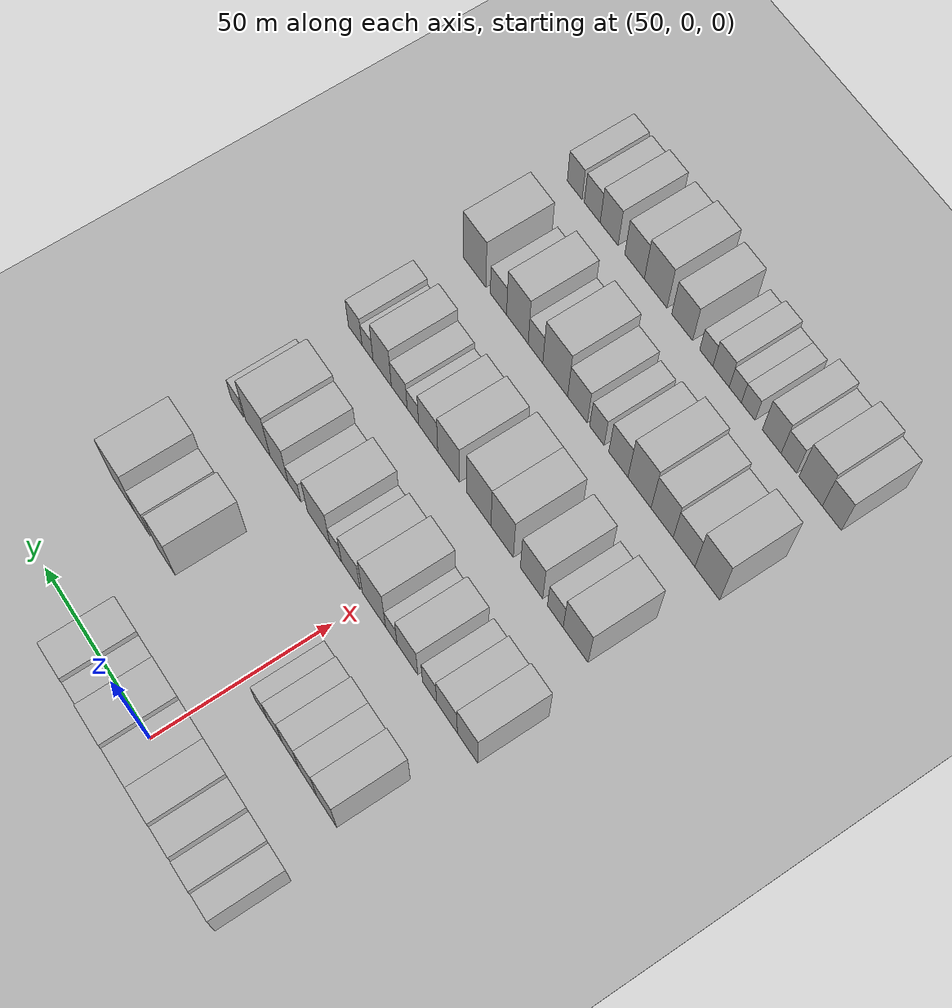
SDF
<sdf version="1.6">
 <world name="default">
  <include><name>ground_plane_1</name><uri>model://HANNAS_ground_plane</uri></include>
  <include>
   <name>ground_plane_2</name>
   <uri>model://HANNAS_ground_plane</uri>
   <pose>100 0 0  0 0 0</pose>
  </include>
  <model name="building_61">
   <static>1</static>
   <pose>50.0000 -42.6842 0 0.000000 0.000000 0.000000</pose>
   <link name="link">
    <pose>0 0 7.50 0 0 0</pose>
    <collision name="collision"><geometry><box><size>20.0000 7.1653 15.0000</size></box></geometry></collision>
    <visual name="visual">
     <cast_shadows>0</cast_shadows>
     <geometry><box><size>20.0000 7.1653 15.0000</size></box></geometry>
     <material>
      <script>
       <uri>model://HANNAS_wall/materials/scripts</uri>
       <uri>model://HANNAS_wall/materials/textures</uri>
       <name>vrc/HANNAS_wall</name>
      </script>
     </material>
    </visual>
   </link>
  </model>
  <model name="building_62">
   <static>1</static>
   <pose>50.0000 -35.2547 0 0.000000 0.000000 0.000000</pose>
   <link name="link">
    <pose>0 0 9.00 0 0 0</pose>
    <collision name="collision"><geometry><box><size>20.0000 7.6937 18.0000</size></box></geometry></collision>
    <visual name="visual">
     <cast_shadows>0</cast_shadows>
     <geometry><box><size>20.0000 7.6937 18.0000</size></box></geometry>
     <material>
      <script>
       <uri>model://HANNAS_wall/materials/scripts</uri>
       <uri>model://HANNAS_wall/materials/textures</uri>
       <name>vrc/HANNAS_wall</name>
      </script>
     </material>
    </visual>
   </link>
  </model>
  <model name="building_63">
   <static>1</static>
   <pose>50.0000 -26.3390 0 0.000000 0.000000 0.000000</pose>
   <link name="link">
    <pose>0 0 9.00 0 0 0</pose>
    <collision name="collision"><geometry><box><size>20.0000 8.1377 18.0000</size></box></geometry></collision>
    <visual name="visual">
     <cast_shadows>0</cast_shadows>
     <geometry><box><size>20.0000 8.1377 18.0000</size></box></geometry>
     <material>
      <script>
       <uri>model://HANNAS_wall/materials/scripts</uri>
       <uri>model://HANNAS_wall/materials/textures</uri>
       <name>vrc/HANNAS_wall</name>
      </script>
     </material>
    </visual>
   </link>
  </model>
  <model name="building_64">
   <static>1</static>
   <pose>50.0000 -17.4439 0 0.000000 0.000000 0.000000</pose>
   <link name="link">
    <pose>0 0 10.50 0 0 0</pose>
    <collision name="collision"><geometry><box><size>20.0000 9.6526 21.0000</size></box></geometry></collision>
    <visual name="visual">
     <cast_shadows>0</cast_shadows>
     <geometry><box><size>20.0000 9.6526 21.0000</size></box></geometry>
     <material>
      <script>
       <uri>model://HANNAS_wall/materials/scripts</uri>
       <uri>model://HANNAS_wall/materials/textures</uri>
       <name>vrc/HANNAS_wall</name>
      </script>
     </material>
    </visual>
   </link>
  </model>
  <model name="building_65">
   <static>1</static>
   <pose>50.0000 -7.3971 0 0.000000 0.000000 0.000000</pose>
   <link name="link">
    <pose>0 0 10.50 0 0 0</pose>
    <collision name="collision"><geometry><box><size>20.0000 10.4410 21.0000</size></box></geometry></collision>
    <visual name="visual">
     <cast_shadows>0</cast_shadows>
     <geometry><box><size>20.0000 10.4410 21.0000</size></box></geometry>
     <material>
      <script>
       <uri>model://HANNAS_wall/materials/scripts</uri>
       <uri>model://HANNAS_wall/materials/textures</uri>
       <name>vrc/HANNAS_wall</name>
      </script>
     </material>
    </visual>
   </link>
  </model>
  <model name="building_66">
   <static>1</static>
   <pose>50.0000 3.3066 0 0.000000 0.000000 0.000000</pose>
   <link name="link">
    <pose>0 0 12.00 0 0 0</pose>
    <collision name="collision"><geometry><box><size>20.0000 10.9665 24.0000</size></box></geometry></collision>
    <visual name="visual">
     <cast_shadows>0</cast_shadows>
     <geometry><box><size>20.0000 10.9665 24.0000</size></box></geometry>
     <material>
      <script>
       <uri>model://HANNAS_wall/materials/scripts</uri>
       <uri>model://HANNAS_wall/materials/textures</uri>
       <name>vrc/HANNAS_wall</name>
      </script>
     </material>
    </visual>
   </link>
  </model>
  <model name="building_67">
   <static>1</static>
   <pose>50.0000 12.7950 0 0.000000 0.000000 0.000000</pose>
   <link name="link">
    <pose>0 0 9.00 0 0 0</pose>
    <collision name="collision"><geometry><box><size>20.0000 8.0103 18.0000</size></box></geometry></collision>
    <visual name="visual">
     <cast_shadows>0</cast_shadows>
     <geometry><box><size>20.0000 8.0103 18.0000</size></box></geometry>
     <material>
      <script>
       <uri>model://HANNAS_wall/materials/scripts</uri>
       <uri>model://HANNAS_wall/materials/textures</uri>
       <name>vrc/HANNAS_wall</name>
      </script>
     </material>
    </visual>
   </link>
  </model>
  <model name="building_68">
   <static>1</static>
   <pose>50.0000 21.8541 0 0.000000 0.000000 0.000000</pose>
   <link name="link">
    <pose>0 0 10.50 0 0 0</pose>
    <collision name="collision"><geometry><box><size>20.0000 10.1078 21.0000</size></box></geometry></collision>
    <visual name="visual">
     <cast_shadows>0</cast_shadows>
     <geometry><box><size>20.0000 10.1078 21.0000</size></box></geometry>
     <material>
      <script>
       <uri>model://HANNAS_wall/materials/scripts</uri>
       <uri>model://HANNAS_wall/materials/textures</uri>
       <name>vrc/HANNAS_wall</name>
      </script>
     </material>
    </visual>
   </link>
  </model>
  <model name="building_180">
   <static>1</static>
   <pose>85.0000 -37.4590 0 0.000000 0.000000 0.000000</pose>
   <link name="link">
    <pose>0 0 10.50 0 0 0</pose>
    <collision name="collision"><geometry><box><size>20.0000 8.5029 21.0000</size></box></geometry></collision>
    <visual name="visual">
     <cast_shadows>0</cast_shadows>
     <geometry><box><size>20.0000 8.5029 21.0000</size></box></geometry>
     <material>
      <script>
       <uri>model://HANNAS_wall/materials/scripts</uri>
       <uri>model://HANNAS_wall/materials/textures</uri>
       <name>vrc/HANNAS_wall</name>
      </script>
     </material>
    </visual>
   </link>
  </model>
  <model name="building_181">
   <static>1</static>
   <pose>85.0000 -29.2790 0 0.000000 0.000000 0.000000</pose>
   <link name="link">
    <pose>0 0 9.00 0 0 0</pose>
    <collision name="collision"><geometry><box><size>20.0000 7.8571 18.0000</size></box></geometry></collision>
    <visual name="visual">
     <cast_shadows>0</cast_shadows>
     <geometry><box><size>20.0000 7.8571 18.0000</size></box></geometry>
     <material>
      <script>
       <uri>model://HANNAS_wall/materials/scripts</uri>
       <uri>model://HANNAS_wall/materials/textures</uri>
       <name>vrc/HANNAS_wall</name>
      </script>
     </material>
    </visual>
   </link>
  </model>
  <model name="building_182">
   <static>1</static>
   <pose>85.0000 -21.7177 0 0.000000 0.000000 0.000000</pose>
   <link name="link">
    <pose>0 0 9.00 0 0 0</pose>
    <collision name="collision"><geometry><box><size>20.0000 7.2654 18.0000</size></box></geometry></collision>
    <visual name="visual">
     <cast_shadows>0</cast_shadows>
     <geometry><box><size>20.0000 7.2654 18.0000</size></box></geometry>
     <material>
      <script>
       <uri>model://HANNAS_wall/materials/scripts</uri>
       <uri>model://HANNAS_wall/materials/textures</uri>
       <name>vrc/HANNAS_wall</name>
      </script>
     </material>
    </visual>
   </link>
  </model>
  <model name="building_183">
   <static>1</static>
   <pose>85.0000 -14.7252 0 0.000000 0.000000 0.000000</pose>
   <link name="link">
    <pose>0 0 7.50 0 0 0</pose>
    <collision name="collision"><geometry><box><size>20.0000 6.7194 15.0000</size></box></geometry></collision>
    <visual name="visual">
     <cast_shadows>0</cast_shadows>
     <geometry><box><size>20.0000 6.7194 15.0000</size></box></geometry>
     <material>
      <script>
       <uri>model://HANNAS_wall/materials/scripts</uri>
       <uri>model://HANNAS_wall/materials/textures</uri>
       <name>vrc/HANNAS_wall</name>
      </script>
     </material>
    </visual>
   </link>
  </model>
  <model name="building_184">
   <static>1</static>
   <pose>85.0000 -8.6392 0 0.000000 0.000000 0.000000</pose>
   <link name="link">
    <pose>0 0 6.00 0 0 0</pose>
    <collision name="collision"><geometry><box><size>20.0000 5.4527 12.0000</size></box></geometry></collision>
    <visual name="visual">
     <cast_shadows>0</cast_shadows>
     <geometry><box><size>20.0000 5.4527 12.0000</size></box></geometry>
     <material>
      <script>
       <uri>model://HANNAS_wall/materials/scripts</uri>
       <uri>model://HANNAS_wall/materials/textures</uri>
       <name>vrc/HANNAS_wall</name>
      </script>
     </material>
    </visual>
   </link>
  </model>
  <model name="building_185">
   <static>1</static>
   <pose>85.0000 35.5126 0 0.000000 0.000000 0.000000</pose>
   <link name="link">
    <pose>0 0 10.50 0 0 0</pose>
    <collision name="collision"><geometry><box><size>20.0000 8.9503 21.0000</size></box></geometry></collision>
    <visual name="visual">
     <cast_shadows>0</cast_shadows>
     <geometry><box><size>20.0000 8.9503 21.0000</size></box></geometry>
     <material>
      <script>
       <uri>model://HANNAS_wall/materials/scripts</uri>
       <uri>model://HANNAS_wall/materials/textures</uri>
       <name>vrc/HANNAS_wall</name>
      </script>
     </material>
    </visual>
   </link>
  </model>
  <model name="building_186">
   <static>1</static>
   <pose>85.0000 46.5726 0 0.000000 0.000000 0.000000</pose>
   <link name="link">
    <pose>0 0 7.50 0 0 0</pose>
    <collision name="collision"><geometry><box><size>20.0000 7.1698 15.0000</size></box></geometry></collision>
    <visual name="visual">
     <cast_shadows>0</cast_shadows>
     <geometry><box><size>20.0000 7.1698 15.0000</size></box></geometry>
     <material>
      <script>
       <uri>model://HANNAS_wall/materials/scripts</uri>
       <uri>model://HANNAS_wall/materials/textures</uri>
       <name>vrc/HANNAS_wall</name>
      </script>
     </material>
    </visual>
   </link>
  </model>
  <model name="building_187">
   <static>1</static>
   <pose>85.0000 55.8489 0 0.000000 0.000000 0.000000</pose>
   <link name="link">
    <pose>0 0 12.00 0 0 0</pose>
    <collision name="collision"><geometry><box><size>20.0000 11.3827 24.0000</size></box></geometry></collision>
    <visual name="visual">
     <cast_shadows>0</cast_shadows>
     <geometry><box><size>20.0000 11.3827 24.0000</size></box></geometry>
     <material>
      <script>
       <uri>model://HANNAS_wall/materials/scripts</uri>
       <uri>model://HANNAS_wall/materials/textures</uri>
       <name>vrc/HANNAS_wall</name>
      </script>
     </material>
    </visual>
   </link>
  </model>
  <model name="building_307">
   <static>1</static>
   <pose>120.0000 -42.8588 0 0.000000 0.000000 0.000000</pose>
   <link name="link">
    <pose>0 0 10.50 0 0 0</pose>
    <collision name="collision"><geometry><box><size>20.0000 8.4917 21.0000</size></box></geometry></collision>
    <visual name="visual">
     <cast_shadows>0</cast_shadows>
     <geometry><box><size>20.0000 8.4917 21.0000</size></box></geometry>
     <material>
      <script>
       <uri>model://HANNAS_wall/materials/scripts</uri>
       <uri>model://HANNAS_wall/materials/textures</uri>
       <name>vrc/HANNAS_wall</name>
      </script>
     </material>
    </visual>
   </link>
  </model>
  <model name="building_308">
   <static>1</static>
   <pose>120.0000 -34.2386 0 0.000000 0.000000 0.000000</pose>
   <link name="link">
    <pose>0 0 9.00 0 0 0</pose>
    <collision name="collision"><geometry><box><size>20.0000 8.7486 18.0000</size></box></geometry></collision>
    <visual name="visual">
     <cast_shadows>0</cast_shadows>
     <geometry><box><size>20.0000 8.7486 18.0000</size></box></geometry>
     <material>
      <script>
       <uri>model://HANNAS_wall/materials/scripts</uri>
       <uri>model://HANNAS_wall/materials/textures</uri>
       <name>vrc/HANNAS_wall</name>
      </script>
     </material>
    </visual>
   </link>
  </model>
  <model name="building_309">
   <static>1</static>
   <pose>120.0000 -26.8386 0 0.000000 0.000000 0.000000</pose>
   <link name="link">
    <pose>0 0 7.50 0 0 0</pose>
    <collision name="collision"><geometry><box><size>20.0000 6.0514 15.0000</size></box></geometry></collision>
    <visual name="visual">
     <cast_shadows>0</cast_shadows>
     <geometry><box><size>20.0000 6.0514 15.0000</size></box></geometry>
     <material>
      <script>
       <uri>model://HANNAS_wall/materials/scripts</uri>
       <uri>model://HANNAS_wall/materials/textures</uri>
       <name>vrc/HANNAS_wall</name>
      </script>
     </material>
    </visual>
   </link>
  </model>
  <model name="building_310">
   <static>1</static>
   <pose>120.0000 -17.3308 0 0.000000 0.000000 0.000000</pose>
   <link name="link">
    <pose>0 0 9.00 0 0 0</pose>
    <collision name="collision"><geometry><box><size>20.0000 8.9642 18.0000</size></box></geometry></collision>
    <visual name="visual">
     <cast_shadows>0</cast_shadows>
     <geometry><box><size>20.0000 8.9642 18.0000</size></box></geometry>
     <material>
      <script>
       <uri>model://HANNAS_wall/materials/scripts</uri>
       <uri>model://HANNAS_wall/materials/textures</uri>
       <name>vrc/HANNAS_wall</name>
      </script>
     </material>
    </visual>
   </link>
  </model>
  <model name="building_311">
   <static>1</static>
   <pose>120.0000 -10.3189 0 0.000000 0.000000 0.000000</pose>
   <link name="link">
    <pose>0 0 6.00 0 0 0</pose>
    <collision name="collision"><geometry><box><size>20.0000 5.0596 12.0000</size></box></geometry></collision>
    <visual name="visual">
     <cast_shadows>0</cast_shadows>
     <geometry><box><size>20.0000 5.0596 12.0000</size></box></geometry>
     <material>
      <script>
       <uri>model://HANNAS_wall/materials/scripts</uri>
       <uri>model://HANNAS_wall/materials/textures</uri>
       <name>vrc/HANNAS_wall</name>
      </script>
     </material>
    </visual>
   </link>
  </model>
  <model name="building_312">
   <static>1</static>
   <pose>120.0000 -2.7162 0 0.000000 0.000000 0.000000</pose>
   <link name="link">
    <pose>0 0 12.00 0 0 0</pose>
    <collision name="collision"><geometry><box><size>20.0000 10.1458 24.0000</size></box></geometry></collision>
    <visual name="visual">
     <cast_shadows>0</cast_shadows>
     <geometry><box><size>20.0000 10.1458 24.0000</size></box></geometry>
     <material>
      <script>
       <uri>model://HANNAS_wall/materials/scripts</uri>
       <uri>model://HANNAS_wall/materials/textures</uri>
       <name>vrc/HANNAS_wall</name>
      </script>
     </material>
    </visual>
   </link>
  </model>
  <model name="building_313">
   <static>1</static>
   <pose>120.0000 7.5555 0 0.000000 0.000000 0.000000</pose>
   <link name="link">
    <pose>0 0 9.00 0 0 0</pose>
    <collision name="collision"><geometry><box><size>20.0000 8.3975 18.0000</size></box></geometry></collision>
    <visual name="visual">
     <cast_shadows>0</cast_shadows>
     <geometry><box><size>20.0000 8.3975 18.0000</size></box></geometry>
     <material>
      <script>
       <uri>model://HANNAS_wall/materials/scripts</uri>
       <uri>model://HANNAS_wall/materials/textures</uri>
       <name>vrc/HANNAS_wall</name>
      </script>
     </material>
    </visual>
   </link>
  </model>
  <model name="building_314">
   <static>1</static>
   <pose>120.0000 14.3460 0 0.000000 0.000000 0.000000</pose>
   <link name="link">
    <pose>0 0 6.00 0 0 0</pose>
    <collision name="collision"><geometry><box><size>20.0000 5.1835 12.0000</size></box></geometry></collision>
    <visual name="visual">
     <cast_shadows>0</cast_shadows>
     <geometry><box><size>20.0000 5.1835 12.0000</size></box></geometry>
     <material>
      <script>
       <uri>model://HANNAS_wall/materials/scripts</uri>
       <uri>model://HANNAS_wall/materials/textures</uri>
       <name>vrc/HANNAS_wall</name>
      </script>
     </material>
    </visual>
   </link>
  </model>
  <model name="building_315">
   <static>1</static>
   <pose>120.0000 22.0941 0 0.000000 0.000000 0.000000</pose>
   <link name="link">
    <pose>0 0 10.50 0 0 0</pose>
    <collision name="collision"><geometry><box><size>20.0000 10.3126 21.0000</size></box></geometry></collision>
    <visual name="visual">
     <cast_shadows>0</cast_shadows>
     <geometry><box><size>20.0000 10.3126 21.0000</size></box></geometry>
     <material>
      <script>
       <uri>model://HANNAS_wall/materials/scripts</uri>
       <uri>model://HANNAS_wall/materials/textures</uri>
       <name>vrc/HANNAS_wall</name>
      </script>
     </material>
    </visual>
   </link>
  </model>
  <model name="building_316">
   <static>1</static>
   <pose>120.0000 33.1572 0 0.000000 0.000000 0.000000</pose>
   <link name="link">
    <pose>0 0 6.00 0 0 0</pose>
    <collision name="collision"><geometry><box><size>20.0000 5.8138 12.0000</size></box></geometry></collision>
    <visual name="visual">
     <cast_shadows>0</cast_shadows>
     <geometry><box><size>20.0000 5.8138 12.0000</size></box></geometry>
     <material>
      <script>
       <uri>model://HANNAS_wall/materials/scripts</uri>
       <uri>model://HANNAS_wall/materials/textures</uri>
       <name>vrc/HANNAS_wall</name>
      </script>
     </material>
    </visual>
   </link>
  </model>
  <model name="building_317">
   <static>1</static>
   <pose>120.0000 40.3240 0 0.000000 0.000000 0.000000</pose>
   <link name="link">
    <pose>0 0 10.50 0 0 0</pose>
    <collision name="collision"><geometry><box><size>20.0000 8.5197 21.0000</size></box></geometry></collision>
    <visual name="visual">
     <cast_shadows>0</cast_shadows>
     <geometry><box><size>20.0000 8.5197 21.0000</size></box></geometry>
     <material>
      <script>
       <uri>model://HANNAS_wall/materials/scripts</uri>
       <uri>model://HANNAS_wall/materials/textures</uri>
       <name>vrc/HANNAS_wall</name>
      </script>
     </material>
    </visual>
   </link>
  </model>
  <model name="building_318">
   <static>1</static>
   <pose>120.0000 50.4020 0 0.000000 0.000000 0.000000</pose>
   <link name="link">
    <pose>0 0 12.00 0 0 0</pose>
    <collision name="collision"><geometry><box><size>20.0000 11.6364 24.0000</size></box></geometry></collision>
    <visual name="visual">
     <cast_shadows>0</cast_shadows>
     <geometry><box><size>20.0000 11.6364 24.0000</size></box></geometry>
     <material>
      <script>
       <uri>model://HANNAS_wall/materials/scripts</uri>
       <uri>model://HANNAS_wall/materials/textures</uri>
       <name>vrc/HANNAS_wall</name>
      </script>
     </material>
    </visual>
   </link>
  </model>
  <model name="building_319">
   <static>1</static>
   <pose>120.0000 60.1606 0 0.000000 0.000000 0.000000</pose>
   <link name="link">
    <pose>0 0 6.00 0 0 0</pose>
    <collision name="collision"><geometry><box><size>20.0000 5.8808 12.0000</size></box></geometry></collision>
    <visual name="visual">
     <cast_shadows>0</cast_shadows>
     <geometry><box><size>20.0000 5.8808 12.0000</size></box></geometry>
     <material>
      <script>
       <uri>model://HANNAS_wall/materials/scripts</uri>
       <uri>model://HANNAS_wall/materials/textures</uri>
       <name>vrc/HANNAS_wall</name>
      </script>
     </material>
    </visual>
   </link>
  </model>
  <model name="building_426">
   <static>1</static>
   <pose>155.0000 -36.3717 0 0.000000 0.000000 0.000000</pose>
   <link name="link">
    <pose>0 0 10.50 0 0 0</pose>
    <collision name="collision"><geometry><box><size>20.0000 10.3200 21.0000</size></box></geometry></collision>
    <visual name="visual">
     <cast_shadows>0</cast_shadows>
     <geometry><box><size>20.0000 10.3200 21.0000</size></box></geometry>
     <material>
      <script>
       <uri>model://HANNAS_wall/materials/scripts</uri>
       <uri>model://HANNAS_wall/materials/textures</uri>
       <name>vrc/HANNAS_wall</name>
      </script>
     </material>
    </visual>
   </link>
  </model>
  <model name="building_427">
   <static>1</static>
   <pose>155.0000 -27.9300 0 0.000000 0.000000 0.000000</pose>
   <link name="link">
    <pose>0 0 7.50 0 0 0</pose>
    <collision name="collision"><geometry><box><size>20.0000 6.5632 15.0000</size></box></geometry></collision>
    <visual name="visual">
     <cast_shadows>0</cast_shadows>
     <geometry><box><size>20.0000 6.5632 15.0000</size></box></geometry>
     <material>
      <script>
       <uri>model://HANNAS_wall/materials/scripts</uri>
       <uri>model://HANNAS_wall/materials/textures</uri>
       <name>vrc/HANNAS_wall</name>
      </script>
     </material>
    </visual>
   </link>
  </model>
  <model name="building_428">
   <static>1</static>
   <pose>155.0000 -17.9078 0 0.000000 0.000000 0.000000</pose>
   <link name="link">
    <pose>0 0 10.50 0 0 0</pose>
    <collision name="collision"><geometry><box><size>20.0000 9.4812 21.0000</size></box></geometry></collision>
    <visual name="visual">
     <cast_shadows>0</cast_shadows>
     <geometry><box><size>20.0000 9.4812 21.0000</size></box></geometry>
     <material>
      <script>
       <uri>model://HANNAS_wall/materials/scripts</uri>
       <uri>model://HANNAS_wall/materials/textures</uri>
       <name>vrc/HANNAS_wall</name>
      </script>
     </material>
    </visual>
   </link>
  </model>
  <model name="building_429">
   <static>1</static>
   <pose>155.0000 -5.3427 0 0.000000 0.000000 0.000000</pose>
   <link name="link">
    <pose>0 0 12.00 0 0 0</pose>
    <collision name="collision"><geometry><box><size>20.0000 9.6491 24.0000</size></box></geometry></collision>
    <visual name="visual">
     <cast_shadows>0</cast_shadows>
     <geometry><box><size>20.0000 9.6491 24.0000</size></box></geometry>
     <material>
      <script>
       <uri>model://HANNAS_wall/materials/scripts</uri>
       <uri>model://HANNAS_wall/materials/textures</uri>
       <name>vrc/HANNAS_wall</name>
      </script>
     </material>
    </visual>
   </link>
  </model>
  <model name="building_430">
   <static>1</static>
   <pose>155.0000 4.8584 0 0.000000 0.000000 0.000000</pose>
   <link name="link">
    <pose>0 0 12.00 0 0 0</pose>
    <collision name="collision"><geometry><box><size>20.0000 10.7531 24.0000</size></box></geometry></collision>
    <visual name="visual">
     <cast_shadows>0</cast_shadows>
     <geometry><box><size>20.0000 10.7531 24.0000</size></box></geometry>
     <material>
      <script>
       <uri>model://HANNAS_wall/materials/scripts</uri>
       <uri>model://HANNAS_wall/materials/textures</uri>
       <name>vrc/HANNAS_wall</name>
      </script>
     </material>
    </visual>
   </link>
  </model>
  <model name="building_431">
   <static>1</static>
   <pose>155.0000 18.0829 0 0.000000 0.000000 0.000000</pose>
   <link name="link">
    <pose>0 0 10.50 0 0 0</pose>
    <collision name="collision"><geometry><box><size>20.0000 9.6959 21.0000</size></box></geometry></collision>
    <visual name="visual">
     <cast_shadows>0</cast_shadows>
     <geometry><box><size>20.0000 9.6959 21.0000</size></box></geometry>
     <material>
      <script>
       <uri>model://HANNAS_wall/materials/scripts</uri>
       <uri>model://HANNAS_wall/materials/textures</uri>
       <name>vrc/HANNAS_wall</name>
      </script>
     </material>
    </visual>
   </link>
  </model>
  <model name="building_432">
   <static>1</static>
   <pose>155.0000 27.2293 0 0.000000 0.000000 0.000000</pose>
   <link name="link">
    <pose>0 0 9.00 0 0 0</pose>
    <collision name="collision"><geometry><box><size>20.0000 8.5970 18.0000</size></box></geometry></collision>
    <visual name="visual">
     <cast_shadows>0</cast_shadows>
     <geometry><box><size>20.0000 8.5970 18.0000</size></box></geometry>
     <material>
      <script>
       <uri>model://HANNAS_wall/materials/scripts</uri>
       <uri>model://HANNAS_wall/materials/textures</uri>
       <name>vrc/HANNAS_wall</name>
      </script>
     </material>
    </visual>
   </link>
  </model>
  <model name="building_433">
   <static>1</static>
   <pose>155.0000 34.1447 0 0.000000 0.000000 0.000000</pose>
   <link name="link">
    <pose>0 0 6.00 0 0 0</pose>
    <collision name="collision"><geometry><box><size>20.0000 5.2339 12.0000</size></box></geometry></collision>
    <visual name="visual">
     <cast_shadows>0</cast_shadows>
     <geometry><box><size>20.0000 5.2339 12.0000</size></box></geometry>
     <material>
      <script>
       <uri>model://HANNAS_wall/materials/scripts</uri>
       <uri>model://HANNAS_wall/materials/textures</uri>
       <name>vrc/HANNAS_wall</name>
      </script>
     </material>
    </visual>
   </link>
  </model>
  <model name="building_434">
   <static>1</static>
   <pose>155.0000 40.3801 0 0.000000 0.000000 0.000000</pose>
   <link name="link">
    <pose>0 0 7.50 0 0 0</pose>
    <collision name="collision"><geometry><box><size>20.0000 7.2369 15.0000</size></box></geometry></collision>
    <visual name="visual">
     <cast_shadows>0</cast_shadows>
     <geometry><box><size>20.0000 7.2369 15.0000</size></box></geometry>
     <material>
      <script>
       <uri>model://HANNAS_wall/materials/scripts</uri>
       <uri>model://HANNAS_wall/materials/textures</uri>
       <name>vrc/HANNAS_wall</name>
      </script>
     </material>
    </visual>
   </link>
  </model>
  <model name="building_435">
   <static>1</static>
   <pose>155.0000 48.2119 0 0.000000 0.000000 0.000000</pose>
   <link name="link">
    <pose>0 0 10.50 0 0 0</pose>
    <collision name="collision"><geometry><box><size>20.0000 8.4268 21.0000</size></box></geometry></collision>
    <visual name="visual">
     <cast_shadows>0</cast_shadows>
     <geometry><box><size>20.0000 8.4268 21.0000</size></box></geometry>
     <material>
      <script>
       <uri>model://HANNAS_wall/materials/scripts</uri>
       <uri>model://HANNAS_wall/materials/textures</uri>
       <name>vrc/HANNAS_wall</name>
      </script>
     </material>
    </visual>
   </link>
  </model>
  <model name="building_436">
   <static>1</static>
   <pose>155.0000 55.0335 0 0.000000 0.000000 0.000000</pose>
   <link name="link">
    <pose>0 0 6.00 0 0 0</pose>
    <collision name="collision"><geometry><box><size>20.0000 5.2164 12.0000</size></box></geometry></collision>
    <visual name="visual">
     <cast_shadows>0</cast_shadows>
     <geometry><box><size>20.0000 5.2164 12.0000</size></box></geometry>
     <material>
      <script>
       <uri>model://HANNAS_wall/materials/scripts</uri>
       <uri>model://HANNAS_wall/materials/textures</uri>
       <name>vrc/HANNAS_wall</name>
      </script>
     </material>
    </visual>
   </link>
  </model>
  <model name="building_437">
   <static>1</static>
   <pose>155.0000 60.8256 0 0.000000 0.000000 0.000000</pose>
   <link name="link">
    <pose>0 0 7.50 0 0 0</pose>
    <collision name="collision"><geometry><box><size>20.0000 6.3679 15.0000</size></box></geometry></collision>
    <visual name="visual">
     <cast_shadows>0</cast_shadows>
     <geometry><box><size>20.0000 6.3679 15.0000</size></box></geometry>
     <material>
      <script>
       <uri>model://HANNAS_wall/materials/scripts</uri>
       <uri>model://HANNAS_wall/materials/textures</uri>
       <name>vrc/HANNAS_wall</name>
      </script>
     </material>
    </visual>
   </link>
  </model>
  <model name="building_552">
   <static>1</static>
   <pose>190.0000 -41.2935 0 0.000000 0.000000 0.000000</pose>
   <link name="link">
    <pose>0 0 12.00 0 0 0</pose>
    <collision name="collision"><geometry><box><size>20.0000 9.9999 24.0000</size></box></geometry></collision>
    <visual name="visual">
     <cast_shadows>0</cast_shadows>
     <geometry><box><size>20.0000 9.9999 24.0000</size></box></geometry>
     <material>
      <script>
       <uri>model://HANNAS_wall/materials/scripts</uri>
       <uri>model://HANNAS_wall/materials/textures</uri>
       <name>vrc/HANNAS_wall</name>
      </script>
     </material>
    </visual>
   </link>
  </model>
  <model name="building_553">
   <static>1</static>
   <pose>190.0000 -31.8327 0 0.000000 0.000000 0.000000</pose>
   <link name="link">
    <pose>0 0 9.00 0 0 0</pose>
    <collision name="collision"><geometry><box><size>20.0000 8.9216 18.0000</size></box></geometry></collision>
    <visual name="visual">
     <cast_shadows>0</cast_shadows>
     <geometry><box><size>20.0000 8.9216 18.0000</size></box></geometry>
     <material>
      <script>
       <uri>model://HANNAS_wall/materials/scripts</uri>
       <uri>model://HANNAS_wall/materials/textures</uri>
       <name>vrc/HANNAS_wall</name>
      </script>
     </material>
    </visual>
   </link>
  </model>
  <model name="building_554">
   <static>1</static>
   <pose>190.0000 -22.7924 0 0.000000 0.000000 0.000000</pose>
   <link name="link">
    <pose>0 0 10.50 0 0 0</pose>
    <collision name="collision"><geometry><box><size>20.0000 9.1591 21.0000</size></box></geometry></collision>
    <visual name="visual">
     <cast_shadows>0</cast_shadows>
     <geometry><box><size>20.0000 9.1591 21.0000</size></box></geometry>
     <material>
      <script>
       <uri>model://HANNAS_wall/materials/scripts</uri>
       <uri>model://HANNAS_wall/materials/textures</uri>
       <name>vrc/HANNAS_wall</name>
      </script>
     </material>
    </visual>
   </link>
  </model>
  <model name="building_555">
   <static>1</static>
   <pose>190.0000 -13.3695 0 0.000000 0.000000 0.000000</pose>
   <link name="link">
    <pose>0 0 12.00 0 0 0</pose>
    <collision name="collision"><geometry><box><size>20.0000 9.6867 24.0000</size></box></geometry></collision>
    <visual name="visual">
     <cast_shadows>0</cast_shadows>
     <geometry><box><size>20.0000 9.6867 24.0000</size></box></geometry>
     <material>
      <script>
       <uri>model://HANNAS_wall/materials/scripts</uri>
       <uri>model://HANNAS_wall/materials/textures</uri>
       <name>vrc/HANNAS_wall</name>
      </script>
     </material>
    </visual>
   </link>
  </model>
  <model name="building_556">
   <static>1</static>
   <pose>190.0000 -4.4576 0 0.000000 0.000000 0.000000</pose>
   <link name="link">
    <pose>0 0 9.00 0 0 0</pose>
    <collision name="collision"><geometry><box><size>20.0000 8.1370 18.0000</size></box></geometry></collision>
    <visual name="visual">
     <cast_shadows>0</cast_shadows>
     <geometry><box><size>20.0000 8.1370 18.0000</size></box></geometry>
     <material>
      <script>
       <uri>model://HANNAS_wall/materials/scripts</uri>
       <uri>model://HANNAS_wall/materials/textures</uri>
       <name>vrc/HANNAS_wall</name>
      </script>
     </material>
    </visual>
   </link>
  </model>
  <model name="building_557">
   <static>1</static>
   <pose>190.0000 4.7238 0 0.000000 0.000000 0.000000</pose>
   <link name="link">
    <pose>0 0 7.50 0 0 0</pose>
    <collision name="collision"><geometry><box><size>20.0000 6.2259 15.0000</size></box></geometry></collision>
    <visual name="visual">
     <cast_shadows>0</cast_shadows>
     <geometry><box><size>20.0000 6.2259 15.0000</size></box></geometry>
     <material>
      <script>
       <uri>model://HANNAS_wall/materials/scripts</uri>
       <uri>model://HANNAS_wall/materials/textures</uri>
       <name>vrc/HANNAS_wall</name>
      </script>
     </material>
    </visual>
   </link>
  </model>
  <model name="building_558">
   <static>1</static>
   <pose>190.0000 13.0935 0 0.000000 0.000000 0.000000</pose>
   <link name="link">
    <pose>0 0 9.00 0 0 0</pose>
    <collision name="collision"><geometry><box><size>20.0000 8.5135 18.0000</size></box></geometry></collision>
    <visual name="visual">
     <cast_shadows>0</cast_shadows>
     <geometry><box><size>20.0000 8.5135 18.0000</size></box></geometry>
     <material>
      <script>
       <uri>model://HANNAS_wall/materials/scripts</uri>
       <uri>model://HANNAS_wall/materials/textures</uri>
       <name>vrc/HANNAS_wall</name>
      </script>
     </material>
    </visual>
   </link>
  </model>
  <model name="building_559">
   <static>1</static>
   <pose>190.0000 22.8180 0 0.000000 0.000000 0.000000</pose>
   <link name="link">
    <pose>0 0 12.00 0 0 0</pose>
    <collision name="collision"><geometry><box><size>20.0000 10.9354 24.0000</size></box></geometry></collision>
    <visual name="visual">
     <cast_shadows>0</cast_shadows>
     <geometry><box><size>20.0000 10.9354 24.0000</size></box></geometry>
     <material>
      <script>
       <uri>model://HANNAS_wall/materials/scripts</uri>
       <uri>model://HANNAS_wall/materials/textures</uri>
       <name>vrc/HANNAS_wall</name>
      </script>
     </material>
    </visual>
   </link>
  </model>
  <model name="building_560">
   <static>1</static>
   <pose>190.0000 31.5330 0 0.000000 0.000000 0.000000</pose>
   <link name="link">
    <pose>0 0 7.50 0 0 0</pose>
    <collision name="collision"><geometry><box><size>20.0000 6.4946 15.0000</size></box></geometry></collision>
    <visual name="visual">
     <cast_shadows>0</cast_shadows>
     <geometry><box><size>20.0000 6.4946 15.0000</size></box></geometry>
     <material>
      <script>
       <uri>model://HANNAS_wall/materials/scripts</uri>
       <uri>model://HANNAS_wall/materials/textures</uri>
       <name>vrc/HANNAS_wall</name>
      </script>
     </material>
    </visual>
   </link>
  </model>
  <model name="building_561">
   <static>1</static>
   <pose>190.0000 39.6501 0 0.000000 0.000000 0.000000</pose>
   <link name="link">
    <pose>0 0 12.00 0 0 0</pose>
    <collision name="collision"><geometry><box><size>20.0000 9.7396 24.0000</size></box></geometry></collision>
    <visual name="visual">
     <cast_shadows>0</cast_shadows>
     <geometry><box><size>20.0000 9.7396 24.0000</size></box></geometry>
     <material>
      <script>
       <uri>model://HANNAS_wall/materials/scripts</uri>
       <uri>model://HANNAS_wall/materials/textures</uri>
       <name>vrc/HANNAS_wall</name>
      </script>
     </material>
    </visual>
   </link>
  </model>
  <model name="building_562">
   <static>1</static>
   <pose>190.0000 48.1880 0 0.000000 0.000000 0.000000</pose>
   <link name="link">
    <pose>0 0 7.50 0 0 0</pose>
    <collision name="collision"><geometry><box><size>20.0000 7.3362 15.0000</size></box></geometry></collision>
    <visual name="visual">
     <cast_shadows>0</cast_shadows>
     <geometry><box><size>20.0000 7.3362 15.0000</size></box></geometry>
     <material>
      <script>
       <uri>model://HANNAS_wall/materials/scripts</uri>
       <uri>model://HANNAS_wall/materials/textures</uri>
       <name>vrc/HANNAS_wall</name>
      </script>
     </material>
    </visual>
   </link>
  </model>
  <model name="building_563">
   <static>1</static>
   <pose>190.0000 59.0593 0 0.000000 0.000000 0.000000</pose>
   <link name="link">
    <pose>0 0 12.00 0 0 0</pose>
    <collision name="collision"><geometry><box><size>20.0000 10.4064 24.0000</size></box></geometry></collision>
    <visual name="visual">
     <cast_shadows>0</cast_shadows>
     <geometry><box><size>20.0000 10.4064 24.0000</size></box></geometry>
     <material>
      <script>
       <uri>model://HANNAS_wall/materials/scripts</uri>
       <uri>model://HANNAS_wall/materials/textures</uri>
       <name>vrc/HANNAS_wall</name>
      </script>
     </material>
    </visual>
   </link>
  </model>
  <model name="building_676">
   <static>1</static>
   <pose>225.0000 -44.6566 0 0.000000 0.000000 0.000000</pose>
   <link name="link">
    <pose>0 0 9.00 0 0 0</pose>
    <collision name="collision"><geometry><box><size>20.0000 7.5243 18.0000</size></box></geometry></collision>
    <visual name="visual">
     <cast_shadows>0</cast_shadows>
     <geometry><box><size>20.0000 7.5243 18.0000</size></box></geometry>
     <material>
      <script>
       <uri>model://HANNAS_wall/materials/scripts</uri>
       <uri>model://HANNAS_wall/materials/textures</uri>
       <name>vrc/HANNAS_wall</name>
      </script>
     </material>
    </visual>
   </link>
  </model>
  <model name="building_677">
   <static>1</static>
   <pose>225.0000 -36.2185 0 0.000000 0.000000 0.000000</pose>
   <link name="link">
    <pose>0 0 10.50 0 0 0</pose>
    <collision name="collision"><geometry><box><size>20.0000 9.3518 21.0000</size></box></geometry></collision>
    <visual name="visual">
     <cast_shadows>0</cast_shadows>
     <geometry><box><size>20.0000 9.3518 21.0000</size></box></geometry>
     <material>
      <script>
       <uri>model://HANNAS_wall/materials/scripts</uri>
       <uri>model://HANNAS_wall/materials/textures</uri>
       <name>vrc/HANNAS_wall</name>
      </script>
     </material>
    </visual>
   </link>
  </model>
  <model name="building_678">
   <static>1</static>
   <pose>225.0000 -27.4110 0 0.000000 0.000000 0.000000</pose>
   <link name="link">
    <pose>0 0 7.50 0 0 0</pose>
    <collision name="collision"><geometry><box><size>20.0000 6.2633 15.0000</size></box></geometry></collision>
    <visual name="visual">
     <cast_shadows>0</cast_shadows>
     <geometry><box><size>20.0000 6.2633 15.0000</size></box></geometry>
     <material>
      <script>
       <uri>model://HANNAS_wall/materials/scripts</uri>
       <uri>model://HANNAS_wall/materials/textures</uri>
       <name>vrc/HANNAS_wall</name>
      </script>
     </material>
    </visual>
   </link>
  </model>
  <model name="building_679">
   <static>1</static>
   <pose>225.0000 -20.4408 0 0.000000 0.000000 0.000000</pose>
   <link name="link">
    <pose>0 0 9.00 0 0 0</pose>
    <collision name="collision"><geometry><box><size>20.0000 7.6771 18.0000</size></box></geometry></collision>
    <visual name="visual">
     <cast_shadows>0</cast_shadows>
     <geometry><box><size>20.0000 7.6771 18.0000</size></box></geometry>
     <material>
      <script>
       <uri>model://HANNAS_wall/materials/scripts</uri>
       <uri>model://HANNAS_wall/materials/textures</uri>
       <name>vrc/HANNAS_wall</name>
      </script>
     </material>
    </visual>
   </link>
  </model>
  <model name="building_680">
   <static>1</static>
   <pose>225.0000 -10.7714 0 0.000000 0.000000 0.000000</pose>
   <link name="link">
    <pose>0 0 6.00 0 0 0</pose>
    <collision name="collision"><geometry><box><size>20.0000 5.6616 12.0000</size></box></geometry></collision>
    <visual name="visual">
     <cast_shadows>0</cast_shadows>
     <geometry><box><size>20.0000 5.6616 12.0000</size></box></geometry>
     <material>
      <script>
       <uri>model://HANNAS_wall/materials/scripts</uri>
       <uri>model://HANNAS_wall/materials/textures</uri>
       <name>vrc/HANNAS_wall</name>
      </script>
     </material>
    </visual>
   </link>
  </model>
  <model name="building_681">
   <static>1</static>
   <pose>225.0000 -5.4050 0 0.000000 0.000000 0.000000</pose>
   <link name="link">
    <pose>0 0 6.00 0 0 0</pose>
    <collision name="collision"><geometry><box><size>20.0000 5.0713 12.0000</size></box></geometry></collision>
    <visual name="visual">
     <cast_shadows>0</cast_shadows>
     <geometry><box><size>20.0000 5.0713 12.0000</size></box></geometry>
     <material>
      <script>
       <uri>model://HANNAS_wall/materials/scripts</uri>
       <uri>model://HANNAS_wall/materials/textures</uri>
       <name>vrc/HANNAS_wall</name>
      </script>
     </material>
    </visual>
   </link>
  </model>
  <model name="building_682">
   <static>1</static>
   <pose>225.0000 0.5607 0 0.000000 0.000000 0.000000</pose>
   <link name="link">
    <pose>0 0 7.50 0 0 0</pose>
    <collision name="collision"><geometry><box><size>20.0000 6.8602 15.0000</size></box></geometry></collision>
    <visual name="visual">
     <cast_shadows>0</cast_shadows>
     <geometry><box><size>20.0000 6.8602 15.0000</size></box></geometry>
     <material>
      <script>
       <uri>model://HANNAS_wall/materials/scripts</uri>
       <uri>model://HANNAS_wall/materials/textures</uri>
       <name>vrc/HANNAS_wall</name>
      </script>
     </material>
    </visual>
   </link>
  </model>
  <model name="building_683">
   <static>1</static>
   <pose>225.0000 6.7867 0 0.000000 0.000000 0.000000</pose>
   <link name="link">
    <pose>0 0 6.00 0 0 0</pose>
    <collision name="collision"><geometry><box><size>20.0000 5.5917 12.0000</size></box></geometry></collision>
    <visual name="visual">
     <cast_shadows>0</cast_shadows>
     <geometry><box><size>20.0000 5.5917 12.0000</size></box></geometry>
     <material>
      <script>
       <uri>model://HANNAS_wall/materials/scripts</uri>
       <uri>model://HANNAS_wall/materials/textures</uri>
       <name>vrc/HANNAS_wall</name>
      </script>
     </material>
    </visual>
   </link>
  </model>
  <model name="building_684">
   <static>1</static>
   <pose>225.0000 17.0790 0 0.000000 0.000000 0.000000</pose>
   <link name="link">
    <pose>0 0 9.00 0 0 0</pose>
    <collision name="collision"><geometry><box><size>20.0000 8.9931 18.0000</size></box></geometry></collision>
    <visual name="visual">
     <cast_shadows>0</cast_shadows>
     <geometry><box><size>20.0000 8.9931 18.0000</size></box></geometry>
     <material>
      <script>
       <uri>model://HANNAS_wall/materials/scripts</uri>
       <uri>model://HANNAS_wall/materials/textures</uri>
       <name>vrc/HANNAS_wall</name>
      </script>
     </material>
    </visual>
   </link>
  </model>
  <model name="building_685">
   <static>1</static>
   <pose>225.0000 28.5305 0 0.000000 0.000000 0.000000</pose>
   <link name="link">
    <pose>0 0 10.50 0 0 0</pose>
    <collision name="collision"><geometry><box><size>20.0000 9.9099 21.0000</size></box></geometry></collision>
    <visual name="visual">
     <cast_shadows>0</cast_shadows>
     <geometry><box><size>20.0000 9.9099 21.0000</size></box></geometry>
     <material>
      <script>
       <uri>model://HANNAS_wall/materials/scripts</uri>
       <uri>model://HANNAS_wall/materials/textures</uri>
       <name>vrc/HANNAS_wall</name>
      </script>
     </material>
    </visual>
   </link>
  </model>
  <model name="building_686">
   <static>1</static>
   <pose>225.0000 37.7849 0 0.000000 0.000000 0.000000</pose>
   <link name="link">
    <pose>0 0 9.00 0 0 0</pose>
    <collision name="collision"><geometry><box><size>20.0000 8.5988 18.0000</size></box></geometry></collision>
    <visual name="visual">
     <cast_shadows>0</cast_shadows>
     <geometry><box><size>20.0000 8.5988 18.0000</size></box></geometry>
     <material>
      <script>
       <uri>model://HANNAS_wall/materials/scripts</uri>
       <uri>model://HANNAS_wall/materials/textures</uri>
       <name>vrc/HANNAS_wall</name>
      </script>
     </material>
    </visual>
   </link>
  </model>
  <model name="building_687">
   <static>1</static>
   <pose>225.0000 49.0838 0 0.000000 0.000000 0.000000</pose>
   <link name="link">
    <pose>0 0 9.00 0 0 0</pose>
    <collision name="collision"><geometry><box><size>20.0000 7.9990 18.0000</size></box></geometry></collision>
    <visual name="visual">
     <cast_shadows>0</cast_shadows>
     <geometry><box><size>20.0000 7.9990 18.0000</size></box></geometry>
     <material>
      <script>
       <uri>model://HANNAS_wall/materials/scripts</uri>
       <uri>model://HANNAS_wall/materials/textures</uri>
       <name>vrc/HANNAS_wall</name>
      </script>
     </material>
    </visual>
   </link>
  </model>
  <model name="building_688">
   <static>1</static>
   <pose>225.0000 56.6732 0 0.000000 0.000000 0.000000</pose>
   <link name="link">
    <pose>0 0 7.50 0 0 0</pose>
    <collision name="collision"><geometry><box><size>20.0000 7.1798 15.0000</size></box></geometry></collision>
    <visual name="visual">
     <cast_shadows>0</cast_shadows>
     <geometry><box><size>20.0000 7.1798 15.0000</size></box></geometry>
     <material>
      <script>
       <uri>model://HANNAS_wall/materials/scripts</uri>
       <uri>model://HANNAS_wall/materials/textures</uri>
       <name>vrc/HANNAS_wall</name>
      </script>
     </material>
    </visual>
   </link>
  </model>
  <model name="building_689">
   <static>1</static>
   <pose>225.0000 64.6266 0 0.000000 0.000000 0.000000</pose>
   <link name="link">
    <pose>0 0 7.50 0 0 0</pose>
    <collision name="collision"><geometry><box><size>20.0000 6.7271 15.0000</size></box></geometry></collision>
    <visual name="visual">
     <cast_shadows>0</cast_shadows>
     <geometry><box><size>20.0000 6.7271 15.0000</size></box></geometry>
     <material>
      <script>
       <uri>model://HANNAS_wall/materials/scripts</uri>
       <uri>model://HANNAS_wall/materials/textures</uri>
       <name>vrc/HANNAS_wall</name>
      </script>
     </material>
    </visual>
   </link>
  </model>
 </world>
</sdf>
